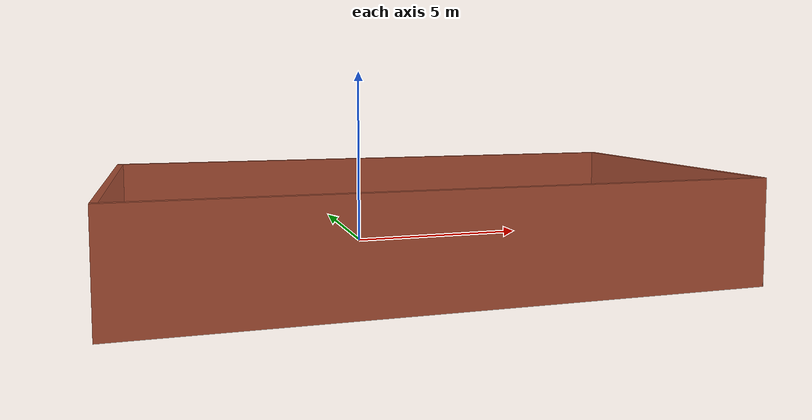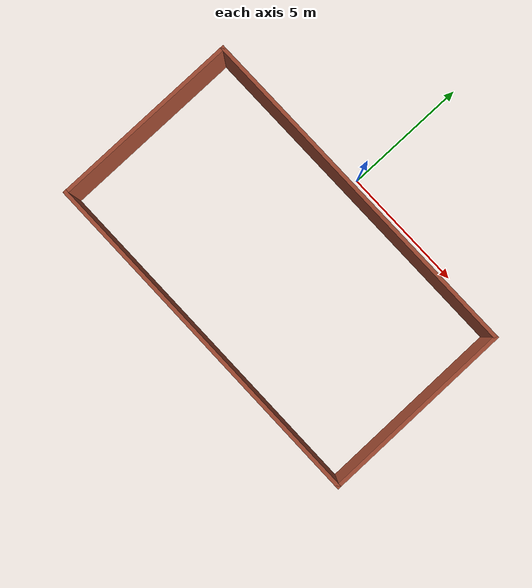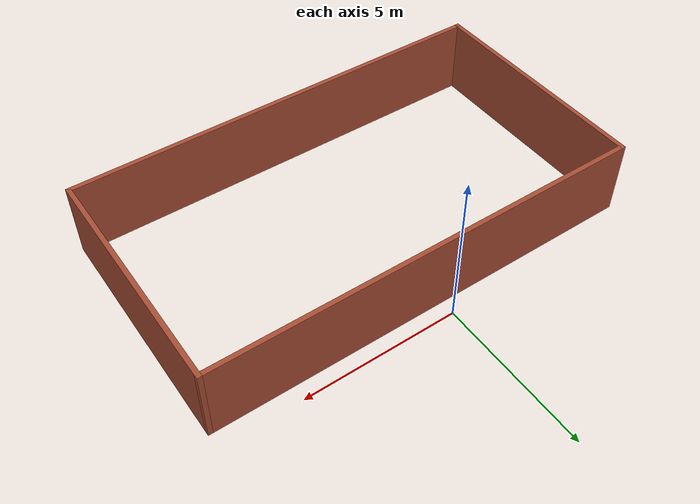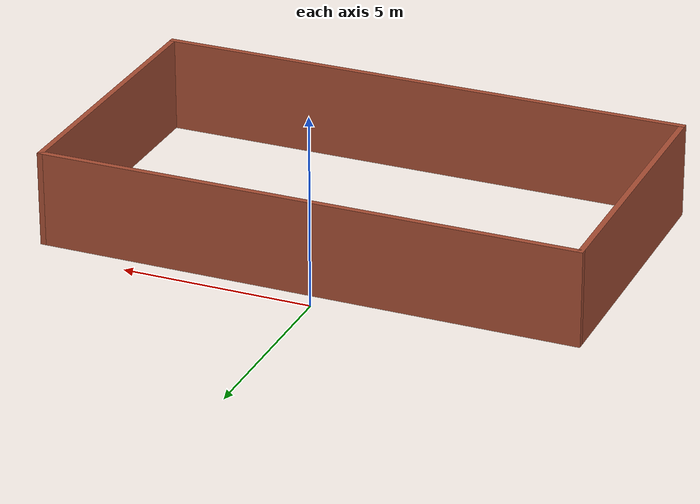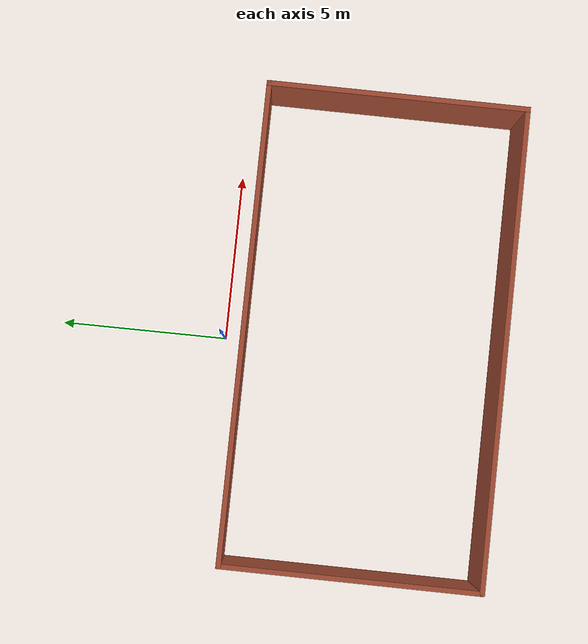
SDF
<?xml version='1.0'?>
<sdf version='1.7'>
  <model name='room'>
    <pose>0.42 -4.1225 0 0 -0 0</pose>
    <link name='Wall_0'>
      <collision name='Wall_0_Collision'>
        <geometry>
          <box>
            <size>7.75 0.15 2.5</size>
          </box>
        </geometry>
        <pose>0 0 1.25 0 -0 0</pose>
      </collision>
      <visual name='Wall_0_Visual'>
        <pose>0 0 1.25 0 -0 0</pose>
        <geometry>
          <box>
            <size>7.75 0.15 2.5</size>
          </box>
        </geometry>
        <material>
          <script>
            <uri>file://media/materials/scripts/gazebo.material</uri>
            <name>Gazebo/Bricks</name>
          </script>
          <ambient>1 1 1 1</ambient>
        </material>
        <meta>
          <layer>0</layer>
        </meta>
      </visual>
      <pose>-7.05 -0.247499 0 0 -0 -1.5708</pose>
    </link>
    <link name='Wall_1'>
      <collision name='Wall_1_Collision'>
        <geometry>
          <box>
            <size>14.25 0.15 2.5</size>
          </box>
        </geometry>
        <pose>0 0 1.25 0 -0 0</pose>
      </collision>
      <visual name='Wall_1_Visual'>
        <pose>0 0 1.25 0 -0 0</pose>
        <geometry>
          <box>
            <size>14.25 0.15 2.5</size>
          </box>
        </geometry>
        <material>
          <script>
            <uri>file://media/materials/scripts/gazebo.material</uri>
            <name>Gazebo/Bricks</name>
          </script>
          <ambient>1 1 1 1</ambient>
        </material>
        <meta>
          <layer>0</layer>
        </meta>
      </visual>
      <pose>0 -4.0475 0 0 -0 0</pose>
    </link>
    <link name='Wall_2'>
      <collision name='Wall_2_Collision'>
        <geometry>
          <box>
            <size>7.75 0.15 2.5</size>
          </box>
        </geometry>
        <pose>0 0 1.25 0 -0 0</pose>
      </collision>
      <visual name='Wall_2_Visual'>
        <pose>0 0 1.25 0 -0 0</pose>
        <geometry>
          <box>
            <size>7.75 0.15 2.5</size>
          </box>
        </geometry>
        <material>
          <script>
            <uri>file://media/materials/scripts/gazebo.material</uri>
            <name>Gazebo/Bricks</name>
          </script>
          <ambient>1 1 1 1</ambient>
        </material>
        <meta>
          <layer>0</layer>
        </meta>
      </visual>
      <pose>7.05 -0.247499 0 0 -0 1.5708</pose>
    </link>
    <link name='Wall_3'>
      <collision name='Wall_3_Collision'>
        <geometry>
          <box>
            <size>14.25 0.15 2.5</size>
          </box>
        </geometry>
        <pose>0 0 1.25 0 -0 0</pose>
      </collision>
      <visual name='Wall_3_Visual'>
        <pose>0 0 1.25 0 -0 0</pose>
        <geometry>
          <box>
            <size>14.25 0.15 2.5</size>
          </box>
        </geometry>
        <material>
          <script>
            <uri>file://media/materials/scripts/gazebo.material</uri>
            <name>Gazebo/Bricks</name>
          </script>
          <ambient>1 1 1 1</ambient>
        </material>
        <meta>
          <layer>0</layer>
        </meta>
      </visual>
      <pose>0 3.5525 0 0 -0 3.14159</pose>
    </link>
    <static>1</static>
  </model>
</sdf>
